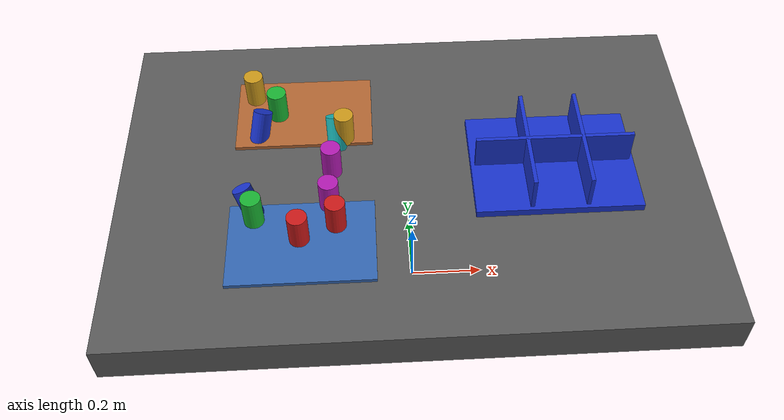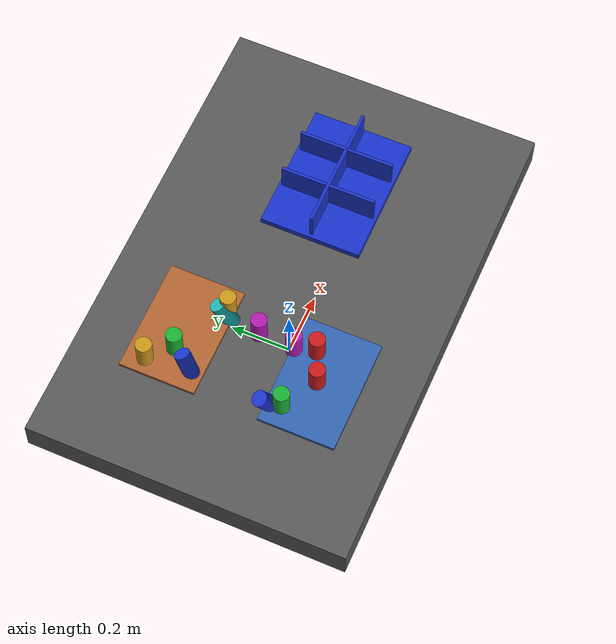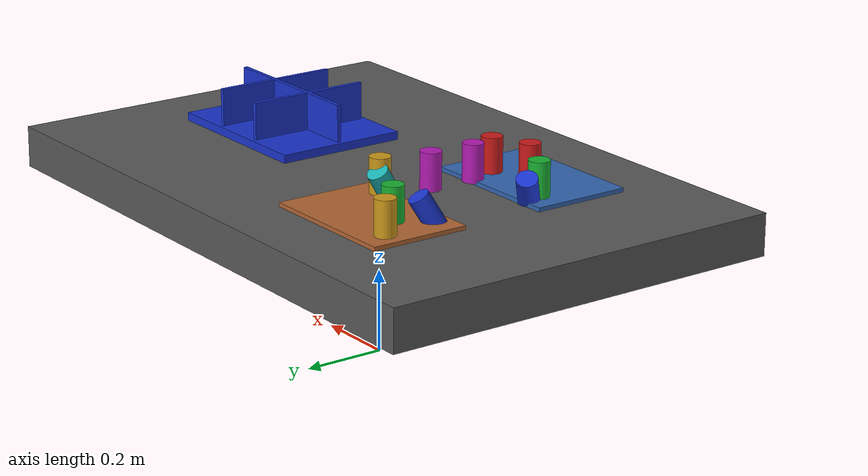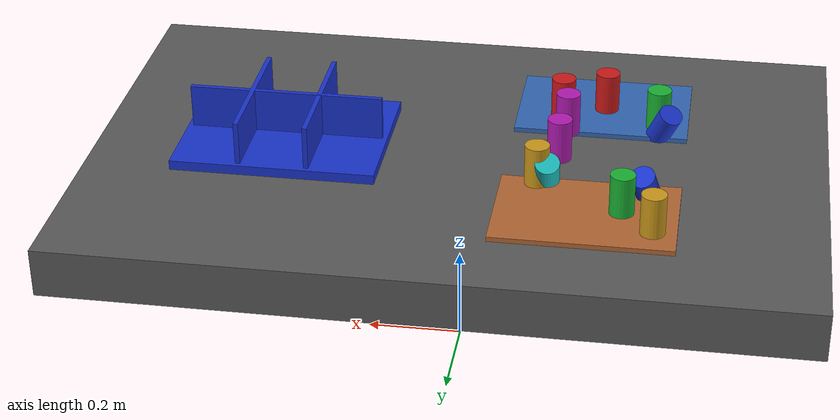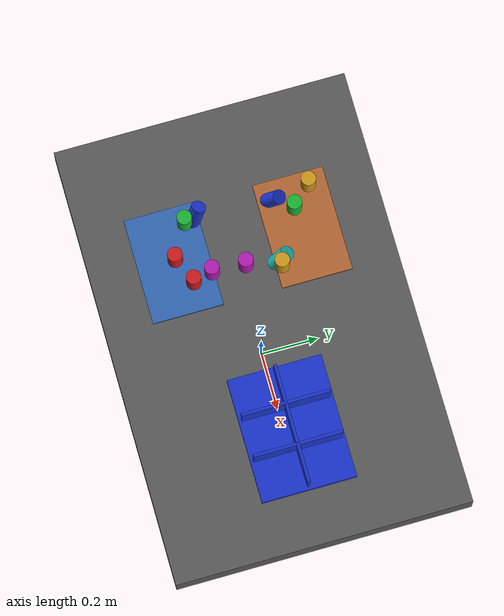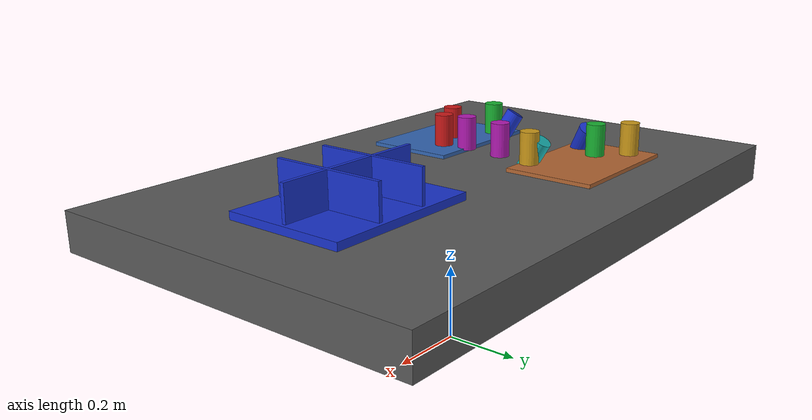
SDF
<?xml version="1.0" ?>
<sdf version="1.9">
  <!-- Standalone M1B scene.  The controller-backed Panda is spawned by the
       existing launch path; this file never alters the frozen M1A cube world. -->
  <world name="industrial_cylinder_v1">
    <physics name="bullet" type="bullet"><max_step_size>0.001</max_step_size><real_time_factor>1.0</real_time_factor></physics>
    <plugin name="gz::sim::systems::Physics" filename="gz-sim-physics-system"><engine><filename>gz-physics-bullet-featherstone-plugin</filename></engine></plugin>
    <plugin name="gz::sim::systems::UserCommands" filename="gz-sim-user-commands-system"/>
    <plugin name="gz::sim::systems::SceneBroadcaster" filename="gz-sim-scene-broadcaster-system"/>
    <plugin name="gz::sim::systems::Sensors" filename="gz-sim-sensors-system"><render_engine>ogre2</render_engine></plugin>
    <gravity>0 0 -9.81</gravity>
    <light type="directional" name="industrial_light"><pose>0 0 5 0 0 0</pose><direction>-0.3 0.2 -0.9</direction><diffuse>0.9 0.9 0.9 1</diffuse></light>
    <model name="industrial_work_table"><static>true</static><link name="link"><pose>0 0 0.4 0 0 0</pose><collision name="collision"><geometry><box><size>1.5 1.0 0.1</size></box></geometry></collision><visual name="visual"><geometry><box><size>1.5 1.0 0.1</size></box></geometry><material><diffuse>0.35 0.35 0.35 1</diffuse></material></visual></link></model>
    <model name="camera_fixture"><static>true</static><link name="camera_rgbd"><pose>-0.80 -0.80 1.40 0 0.77 0.93</pose><sensor name="front_rgbd" type="rgbd_camera"><always_on>1</always_on><update_rate>15</update_rate><topic>/xh/camera/rgbd</topic><camera><horizontal_fov>1.047</horizontal_fov><image><width>640</width><height>480</height><format>R8G8B8</format></image><clip><near>0.1</near><far>4.0</far></clip></camera></sensor></link></model>
    <model name="incoming_zone_a"><static>true</static><link name="link"><pose>-0.28 -0.22 0.455 0 0 0</pose><visual name="visual"><geometry><box><size>0.36 0.24 0.01</size></box></geometry><material><diffuse>0.2 0.4 0.7 1</diffuse></material></visual></link></model>
    <model name="incoming_zone_b"><static>true</static><link name="link"><pose>-0.28 0.22 0.455 0 0 0</pose><visual name="visual"><geometry><box><size>0.36 0.24 0.01</size></box></geometry><material><diffuse>0.7 0.4 0.2 1</diffuse></material></visual></link></model>
    <!-- M1B_RANDOM_PARTS_BEGIN -->
    <model name="cylinder_01"><pose>-0.1956 -0.1736 0.5000 0.0000 0.0000 -2.5172</pose><link name="link"><inertial><mass>0.06</mass></inertial><collision name="collision"><geometry><cylinder><radius>0.025</radius><length>0.09</length></cylinder></geometry></collision><visual name="visual"><geometry><cylinder><radius>0.025</radius><length>0.09</length></cylinder></geometry><material><diffuse>0.800 0.100 0.100 1</diffuse><specular>0.15 0.15 0.15 1</specular></material></visual></link></model>
    <model name="cylinder_02"><pose>-0.3485 0.2122 0.5000 3.1416 0.0000 -0.6045</pose><link name="link"><inertial><mass>0.06</mass></inertial><collision name="collision"><geometry><cylinder><radius>0.025</radius><length>0.09</length></cylinder></geometry></collision><visual name="visual"><geometry><cylinder><radius>0.025</radius><length>0.09</length></cylinder></geometry><material><diffuse>0.100 0.700 0.200 1</diffuse><specular>0.15 0.15 0.15 1</specular></material></visual></link></model>
    <model name="cylinder_03"><pose>-0.3926 0.1497 0.4800 0.4500 -0.3000 -2.9942</pose><link name="link"><inertial><mass>0.06</mass></inertial><collision name="collision"><geometry><cylinder><radius>0.025</radius><length>0.09</length></cylinder></geometry></collision><visual name="visual"><geometry><cylinder><radius>0.025</radius><length>0.09</length></cylinder></geometry><material><diffuse>0.100 0.200 0.800 1</diffuse><specular>0.15 0.15 0.15 1</specular></material></visual></link></model>
    <model name="cylinder_04"><pose>-0.4124 0.2783 0.5000 0.0000 0.0000 1.1209</pose><link name="link"><inertial><mass>0.06</mass></inertial><collision name="collision"><geometry><cylinder><radius>0.025</radius><length>0.09</length></cylinder></geometry></collision><visual name="visual"><geometry><cylinder><radius>0.025</radius><length>0.09</length></cylinder></geometry><material><diffuse>0.800 0.600 0.100 1</diffuse><specular>0.15 0.15 0.15 1</specular></material></visual></link></model>
    <model name="cylinder_05"><pose>-0.2118 -0.1075 0.5000 3.1416 0.0000 0.2870</pose><link name="link"><inertial><mass>0.06</mass></inertial><collision name="collision"><geometry><cylinder><radius>0.025</radius><length>0.09</length></cylinder></geometry></collision><visual name="visual"><geometry><cylinder><radius>0.025</radius><length>0.09</length></cylinder></geometry><material><diffuse>0.700 0.100 0.700 1</diffuse><specular>0.15 0.15 0.15 1</specular></material></visual></link></model>
    <model name="cylinder_06"><pose>-0.1933 0.1210 0.4800 0.4500 -0.3000 -2.5154</pose><link name="link"><inertial><mass>0.06</mass></inertial><collision name="collision"><geometry><cylinder><radius>0.025</radius><length>0.09</length></cylinder></geometry></collision><visual name="visual"><geometry><cylinder><radius>0.025</radius><length>0.09</length></cylinder></geometry><material><diffuse>0.100 0.700 0.700 1</diffuse><specular>0.15 0.15 0.15 1</specular></material></visual></link></model>
    <model name="cylinder_07"><pose>-0.2853 -0.2120 0.5000 0.0000 0.0000 -0.3904</pose><link name="link"><inertial><mass>0.06</mass></inertial><collision name="collision"><geometry><cylinder><radius>0.025</radius><length>0.09</length></cylinder></geometry></collision><visual name="visual"><geometry><cylinder><radius>0.025</radius><length>0.09</length></cylinder></geometry><material><diffuse>0.800 0.100 0.100 1</diffuse><specular>0.15 0.15 0.15 1</specular></material></visual></link></model>
    <model name="cylinder_08"><pose>-0.3971 -0.1489 0.5000 3.1416 0.0000 1.4687</pose><link name="link"><inertial><mass>0.06</mass></inertial><collision name="collision"><geometry><cylinder><radius>0.025</radius><length>0.09</length></cylinder></geometry></collision><visual name="visual"><geometry><cylinder><radius>0.025</radius><length>0.09</length></cylinder></geometry><material><diffuse>0.100 0.700 0.200 1</diffuse><specular>0.15 0.15 0.15 1</specular></material></visual></link></model>
    <model name="cylinder_09"><pose>-0.4091 -0.1093 0.4800 0.4500 -0.3000 -1.8393</pose><link name="link"><inertial><mass>0.06</mass></inertial><collision name="collision"><geometry><cylinder><radius>0.025</radius><length>0.09</length></cylinder></geometry></collision><visual name="visual"><geometry><cylinder><radius>0.025</radius><length>0.09</length></cylinder></geometry><material><diffuse>0.100 0.200 0.800 1</diffuse><specular>0.15 0.15 0.15 1</specular></material></visual></link></model>
    <model name="cylinder_10"><pose>-0.1725 0.1204 0.5000 0.0000 0.0000 -1.8047</pose><link name="link"><inertial><mass>0.06</mass></inertial><collision name="collision"><geometry><cylinder><radius>0.025</radius><length>0.09</length></cylinder></geometry></collision><visual name="visual"><geometry><cylinder><radius>0.025</radius><length>0.09</length></cylinder></geometry><material><diffuse>0.800 0.600 0.100 1</diffuse><specular>0.15 0.15 0.15 1</specular></material></visual></link></model>
    <model name="cylinder_11"><pose>-0.2058 0.0061 0.5000 3.1416 0.0000 0.7681</pose><link name="link"><inertial><mass>0.06</mass></inertial><collision name="collision"><geometry><cylinder><radius>0.025</radius><length>0.09</length></cylinder></geometry></collision><visual name="visual"><geometry><cylinder><radius>0.025</radius><length>0.09</length></cylinder></geometry><material><diffuse>0.700 0.100 0.700 1</diffuse><specular>0.15 0.15 0.15 1</specular></material></visual></link></model>
    <!-- M1B_RANDOM_PARTS_END -->
    <model name="blue_partition_bin"><static>true</static><pose>0.36 0 0.45 0 0 0</pose><link name="link"><collision name="floor"><pose>0 0 0.01 0 0 0</pose><geometry><box><size>0.42 0.32 0.02</size></box></geometry></collision><visual name="floor_visual"><pose>0 0 0.01 0 0 0</pose><geometry><box><size>0.42 0.32 0.02</size></box></geometry><material><diffuse>0.1 0.2 0.8 1</diffuse></material></visual><visual name="row_divider"><pose>0 0 0.06 0 0 0</pose><geometry><box><size>0.40 0.01 0.10</size></box></geometry><material><diffuse>0.1 0.2 0.8 1</diffuse></material></visual><visual name="col_divider_a"><pose>-0.07 0 0.06 0 0 0</pose><geometry><box><size>0.01 0.30 0.10</size></box></geometry><material><diffuse>0.1 0.2 0.8 1</diffuse></material></visual><visual name="col_divider_b"><pose>0.07 0 0.06 0 0 0</pose><geometry><box><size>0.01 0.30 0.10</size></box></geometry><material><diffuse>0.1 0.2 0.8 1</diffuse></material></visual></link></model>
    <!-- Reserved only: second table, bin transport corridor, stackable-bin
         collision volume, and second arm mounting namespace. -->
  </world>
</sdf>
